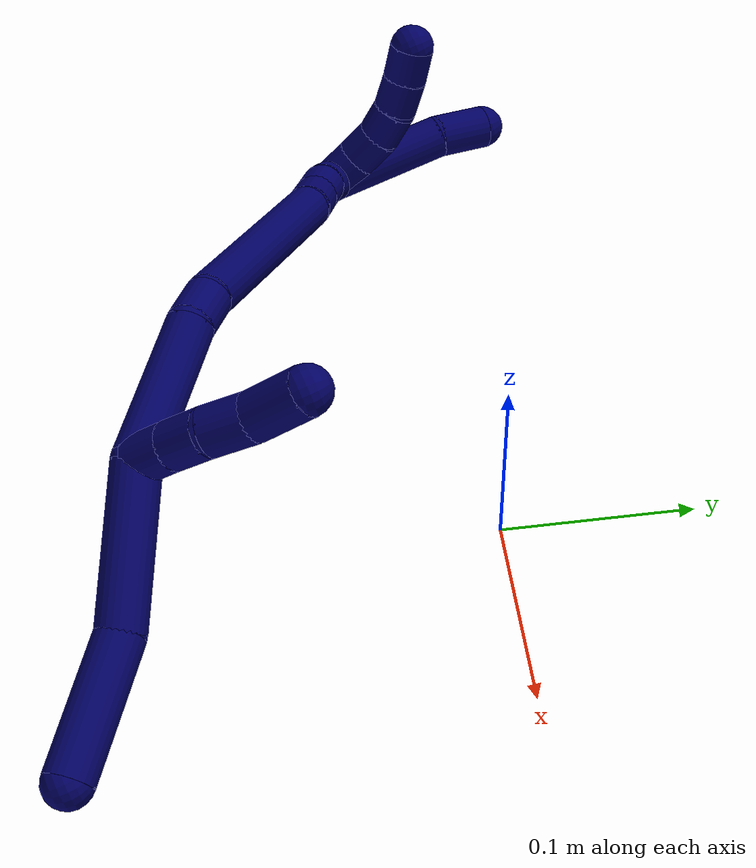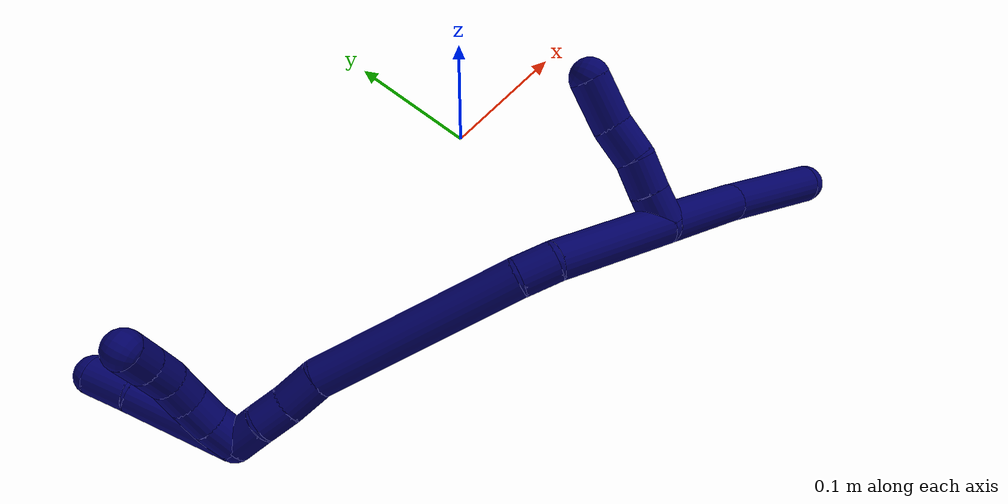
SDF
<sdf version="1.7">
 <world name="default">
  <model name="7">
   <static>0</static>
   <link name="7">
    <collision name="collision-cylinder-e_1_2_8">
     <pose>0.002329 -0.035527 0.018646 1.08749 0.057981 0.035058</pose>
     <geometry><cylinder><radius>0.0125</radius><length>0.080381</length></cylinder></geometry>
     <surface>
      <friction><ode><mu>1.16</mu><mu2>1.16</mu2><slip1>0</slip1><slip2>0</slip2></ode></friction>
      <contact><ode><kp>1e+06</kp><kd>1</kd><max_vel>0</max_vel><min_depth>0.001</min_depth></ode></contact>
     </surface>
    </collision>
    <visual name="visual-cylinder-e_1_2_8">
     <pose>0.002329 -0.035527 0.018646 1.08749 0.057981 0.035058</pose>
     <geometry><cylinder><radius>0.0125</radius><length>0.080381</length></cylinder></geometry>
     <material><ambient>0.003922 0 0.403922 1</ambient></material>
    </visual>
    <collision name="collision-cylinder-e_2_8_6">
     <pose>0.013898 -0.096383 0.059309 0.855208 0.268673 0.123027</pose>
     <geometry><cylinder><radius>0.0125</radius><length>0.069619</length></cylinder></geometry>
     <surface>
      <friction><ode><mu>1.16</mu><mu2>1.16</mu2><slip1>0</slip1><slip2>0</slip2></ode></friction>
      <contact><ode><kp>1e+06</kp><kd>1</kd><max_vel>0</max_vel><min_depth>0.001</min_depth></ode></contact>
     </surface>
    </collision>
    <visual name="visual-cylinder-e_2_8_6">
     <pose>0.013898 -0.096383 0.059309 0.855208 0.268673 0.123027</pose>
     <geometry><cylinder><radius>0.0125</radius><length>0.069619</length></cylinder></geometry>
     <material><ambient>0.003922 0 0.403922 1</ambient></material>
    </visual>
    <collision name="collision-cylinder-e_1_2_9">
     <pose>0.006571 -0.000934 -0.008726 3.03502 0.642743 2.82385</pose>
     <geometry><cylinder><radius>0.0125</radius><length>0.021927</length></cylinder></geometry>
     <surface>
      <friction><ode><mu>1.16</mu><mu2>1.16</mu2><slip1>0</slip1><slip2>0</slip2></ode></friction>
      <contact><ode><kp>1e+06</kp><kd>1</kd><max_vel>0</max_vel><min_depth>0.001</min_depth></ode></contact>
     </surface>
    </collision>
    <visual name="visual-cylinder-e_1_2_9">
     <pose>0.006571 -0.000934 -0.008726 3.03502 0.642743 2.82385</pose>
     <geometry><cylinder><radius>0.0125</radius><length>0.021927</length></cylinder></geometry>
     <material><ambient>0.003922 0 0.403922 1</ambient></material>
    </visual>
    <collision name="collision-cylinder-e_2_9_10">
     <pose>0.020141 -0.00319 -0.02601 2.9882 0.679659 2.71352</pose>
     <geometry><cylinder><radius>0.0125</radius><length>0.022268</length></cylinder></geometry>
     <surface>
      <friction><ode><mu>1.16</mu><mu2>1.16</mu2><slip1>0</slip1><slip2>0</slip2></ode></friction>
      <contact><ode><kp>1e+06</kp><kd>1</kd><max_vel>0</max_vel><min_depth>0.001</min_depth></ode></contact>
     </surface>
    </collision>
    <visual name="visual-cylinder-e_2_9_10">
     <pose>0.020141 -0.00319 -0.02601 2.9882 0.679659 2.71352</pose>
     <geometry><cylinder><radius>0.0125</radius><length>0.022268</length></cylinder></geometry>
     <material><ambient>0.003922 0 0.403922 1</ambient></material>
    </visual>
    <collision name="collision-cylinder-e_3_10_11">
     <pose>0.032352 -0.006221 -0.045187 2.98213 0.451375 2.47181</pose>
     <geometry><cylinder><radius>0.0125</radius><length>0.023904</length></cylinder></geometry>
     <surface>
      <friction><ode><mu>1.16</mu><mu2>1.16</mu2><slip1>0</slip1><slip2>0</slip2></ode></friction>
      <contact><ode><kp>1e+06</kp><kd>1</kd><max_vel>0</max_vel><min_depth>0.001</min_depth></ode></contact>
     </surface>
    </collision>
    <visual name="visual-cylinder-e_3_10_11">
     <pose>0.032352 -0.006221 -0.045187 2.98213 0.451375 2.47181</pose>
     <geometry><cylinder><radius>0.0125</radius><length>0.023904</length></cylinder></geometry>
     <material><ambient>0.003922 0 0.403922 1</ambient></material>
    </visual>
    <collision name="collision-cylinder-e_4_11_5">
     <pose>0.047285 -0.008616 -0.068434 3.08727 0.655196 2.98205</pose>
     <geometry><cylinder><radius>0.0125</radius><length>0.031901</length></cylinder></geometry>
     <surface>
      <friction><ode><mu>1.16</mu><mu2>1.16</mu2><slip1>0</slip1><slip2>0</slip2></ode></friction>
      <contact><ode><kp>1e+06</kp><kd>1</kd><max_vel>0</max_vel><min_depth>0.001</min_depth></ode></contact>
     </surface>
    </collision>
    <visual name="visual-cylinder-e_4_11_5">
     <pose>0.047285 -0.008616 -0.068434 3.08727 0.655196 2.98205</pose>
     <geometry><cylinder><radius>0.0125</radius><length>0.031901</length></cylinder></geometry>
     <material><ambient>0.003922 0 0.403922 1</ambient></material>
    </visual>
    <collision name="collision-cylinder-e_1_2_12">
     <pose>-0.014275 0.027335 -0.024315 -2.29779 -0.372015 0.793985</pose>
     <geometry><cylinder><radius>0.0125</radius><length>0.078542</length></cylinder></geometry>
     <surface>
      <friction><ode><mu>1.16</mu><mu2>1.16</mu2><slip1>0</slip1><slip2>0</slip2></ode></friction>
      <contact><ode><kp>1e+06</kp><kd>1</kd><max_vel>0</max_vel><min_depth>0.001</min_depth></ode></contact>
     </surface>
    </collision>
    <visual name="visual-cylinder-e_1_2_12">
     <pose>-0.014275 0.027335 -0.024315 -2.29779 -0.372015 0.793985</pose>
     <geometry><cylinder><radius>0.0125</radius><length>0.078542</length></cylinder></geometry>
     <material><ambient>0.003922 0 0.403922 1</ambient></material>
    </visual>
    <collision name="collision-cylinder-e_2_12_13">
     <pose>-0.035542 0.060851 -0.055749 -2.4266 -0.638163 1.44828</pose>
     <geometry><cylinder><radius>0.0125</radius><length>0.023475</length></cylinder></geometry>
     <surface>
      <friction><ode><mu>1.16</mu><mu2>1.16</mu2><slip1>0</slip1><slip2>0</slip2></ode></friction>
      <contact><ode><kp>1e+06</kp><kd>1</kd><max_vel>0</max_vel><min_depth>0.001</min_depth></ode></contact>
     </surface>
    </collision>
    <visual name="visual-cylinder-e_2_12_13">
     <pose>-0.035542 0.060851 -0.055749 -2.4266 -0.638163 1.44828</pose>
     <geometry><cylinder><radius>0.0125</radius><length>0.023475</length></cylinder></geometry>
     <material><ambient>0.003922 0 0.403922 1</ambient></material>
    </visual>
    <collision name="collision-cylinder-e_3_13_14">
     <pose>-0.091558 0.089974 -0.101018 -2.60016 -0.83354 2.02166</pose>
     <geometry><cylinder><radius>0.0125</radius><length>0.13244</length></cylinder></geometry>
     <surface>
      <friction><ode><mu>1.16</mu><mu2>1.16</mu2><slip1>0</slip1><slip2>0</slip2></ode></friction>
      <contact><ode><kp>1e+06</kp><kd>1</kd><max_vel>0</max_vel><min_depth>0.001</min_depth></ode></contact>
     </surface>
    </collision>
    <visual name="visual-cylinder-e_3_13_14">
     <pose>-0.091558 0.089974 -0.101018 -2.60016 -0.83354 2.02166</pose>
     <geometry><cylinder><radius>0.0125</radius><length>0.13244</length></cylinder></geometry>
     <material><ambient>0.003922 0 0.403922 1</ambient></material>
    </visual>
    <collision name="collision-cylinder-e_4_14_15">
     <pose>-0.150865 0.117452 -0.143661 -2.35159 -1.0152 1.85515</pose>
     <geometry><cylinder><radius>0.0125</radius><length>0.024208</length></cylinder></geometry>
     <surface>
      <friction><ode><mu>1.16</mu><mu2>1.16</mu2><slip1>0</slip1><slip2>0</slip2></ode></friction>
      <contact><ode><kp>1e+06</kp><kd>1</kd><max_vel>0</max_vel><min_depth>0.001</min_depth></ode></contact>
     </surface>
    </collision>
    <visual name="visual-cylinder-e_4_14_15">
     <pose>-0.150865 0.117452 -0.143661 -2.35159 -1.0152 1.85515</pose>
     <geometry><cylinder><radius>0.0125</radius><length>0.024208</length></cylinder></geometry>
     <material><ambient>0.003922 0 0.403922 1</ambient></material>
    </visual>
    <collision name="collision-cylinder-e_5_15_16">
     <pose>-0.169088 0.12615 -0.15263 -2.39231 -0.914714 1.79339</pose>
     <geometry><cylinder><radius>0.0125</radius><length>0.02004</length></cylinder></geometry>
     <surface>
      <friction><ode><mu>1.16</mu><mu2>1.16</mu2><slip1>0</slip1><slip2>0</slip2></ode></friction>
      <contact><ode><kp>1e+06</kp><kd>1</kd><max_vel>0</max_vel><min_depth>0.001</min_depth></ode></contact>
     </surface>
    </collision>
    <visual name="visual-cylinder-e_5_15_16">
     <pose>-0.169088 0.12615 -0.15263 -2.39231 -0.914714 1.79339</pose>
     <geometry><cylinder><radius>0.0125</radius><length>0.02004</length></cylinder></geometry>
     <material><ambient>0.003922 0 0.403922 1</ambient></material>
    </visual>
    <collision name="collision-cylinder-e_6_16_1">
     <pose>-0.186345 0.132797 -0.161621 -2.63883 -1.06552 2.32004</pose>
     <geometry><cylinder><radius>0.0125</radius><length>0.021295</length></cylinder></geometry>
     <surface>
      <friction><ode><mu>1.16</mu><mu2>1.16</mu2><slip1>0</slip1><slip2>0</slip2></ode></friction>
      <contact><ode><kp>1e+06</kp><kd>1</kd><max_vel>0</max_vel><min_depth>0.001</min_depth></ode></contact>
     </surface>
    </collision>
    <visual name="visual-cylinder-e_6_16_1">
     <pose>-0.186345 0.132797 -0.161621 -2.63883 -1.06552 2.32004</pose>
     <geometry><cylinder><radius>0.0125</radius><length>0.021295</length></cylinder></geometry>
     <material><ambient>0.003922 0 0.403922 1</ambient></material>
    </visual>
    <collision name="collision-cylinder-e_1_1_17">
     <pose>-0.197934 0.136041 -0.2011 -3.11983 -0.064878 2.49449</pose>
     <geometry><cylinder><radius>0.0125</radius><length>0.070088</length></cylinder></geometry>
     <surface>
      <friction><ode><mu>1.16</mu><mu2>1.16</mu2><slip1>0</slip1><slip2>0</slip2></ode></friction>
      <contact><ode><kp>1e+06</kp><kd>1</kd><max_vel>0</max_vel><min_depth>0.001</min_depth></ode></contact>
     </surface>
    </collision>
    <visual name="visual-cylinder-e_1_1_17">
     <pose>-0.197934 0.136041 -0.2011 -3.11983 -0.064878 2.49449</pose>
     <geometry><cylinder><radius>0.0125</radius><length>0.070088</length></cylinder></geometry>
     <material><ambient>0.003922 0 0.403922 1</ambient></material>
    </visual>
    <collision name="collision-cylinder-e_2_17_4">
     <pose>-0.203617 0.135135 -0.250528 3.02684 -0.23012 -2.21911</pose>
     <geometry><cylinder><radius>0.0125</radius><length>0.029912</length></cylinder></geometry>
     <surface>
      <friction><ode><mu>1.16</mu><mu2>1.16</mu2><slip1>0</slip1><slip2>0</slip2></ode></friction>
      <contact><ode><kp>1e+06</kp><kd>1</kd><max_vel>0</max_vel><min_depth>0.001</min_depth></ode></contact>
     </surface>
    </collision>
    <visual name="visual-cylinder-e_2_17_4">
     <pose>-0.203617 0.135135 -0.250528 3.02684 -0.23012 -2.21911</pose>
     <geometry><cylinder><radius>0.0125</radius><length>0.029912</length></cylinder></geometry>
     <material><ambient>0.003922 0 0.403922 1</ambient></material>
    </visual>
    <collision name="collision-cylinder-e_1_1_18">
     <pose>-0.19115 0.137759 -0.174711 -2.86018 0.46806 -2.06938</pose>
     <geometry><cylinder><radius>0.0125</radius><length>0.02</length></cylinder></geometry>
     <surface>
      <friction><ode><mu>1.16</mu><mu2>1.16</mu2><slip1>0</slip1><slip2>0</slip2></ode></friction>
      <contact><ode><kp>1e+06</kp><kd>1</kd><max_vel>0</max_vel><min_depth>0.001</min_depth></ode></contact>
     </surface>
    </collision>
    <visual name="visual-cylinder-e_1_1_18">
     <pose>-0.19115 0.137759 -0.174711 -2.86018 0.46806 -2.06938</pose>
     <geometry><cylinder><radius>0.0125</radius><length>0.02</length></cylinder></geometry>
     <material><ambient>0.003922 0 0.403922 1</ambient></material>
    </visual>
    <collision name="collision-cylinder-e_2_18_19">
     <pose>-0.180943 0.142465 -0.191196 -2.86711 0.606001 -2.30961</pose>
     <geometry><cylinder><radius>0.0125</radius><length>0.02</length></cylinder></geometry>
     <surface>
      <friction><ode><mu>1.16</mu><mu2>1.16</mu2><slip1>0</slip1><slip2>0</slip2></ode></friction>
      <contact><ode><kp>1e+06</kp><kd>1</kd><max_vel>0</max_vel><min_depth>0.001</min_depth></ode></contact>
     </surface>
    </collision>
    <visual name="visual-cylinder-e_2_18_19">
     <pose>-0.180943 0.142465 -0.191196 -2.86711 0.606001 -2.30961</pose>
     <geometry><cylinder><radius>0.0125</radius><length>0.02</length></cylinder></geometry>
     <material><ambient>0.003922 0 0.403922 1</ambient></material>
    </visual>
    <collision name="collision-cylinder-e_3_19_20">
     <pose>-0.168316 0.148302 -0.205348 -2.61729 0.765748 -1.96618</pose>
     <geometry><cylinder><radius>0.0125</radius><length>0.02</length></cylinder></geometry>
     <surface>
      <friction><ode><mu>1.16</mu><mu2>1.16</mu2><slip1>0</slip1><slip2>0</slip2></ode></friction>
      <contact><ode><kp>1e+06</kp><kd>1</kd><max_vel>0</max_vel><min_depth>0.001</min_depth></ode></contact>
     </surface>
    </collision>
    <visual name="visual-cylinder-e_3_19_20">
     <pose>-0.168316 0.148302 -0.205348 -2.61729 0.765748 -1.96618</pose>
     <geometry><cylinder><radius>0.0125</radius><length>0.02</length></cylinder></geometry>
     <material><ambient>0.003922 0 0.403922 1</ambient></material>
    </visual>
    <collision name="collision-cylinder-e_4_20_21">
     <pose>-0.154792 0.157402 -0.216723 -2.32258 0.719988 -1.42877</pose>
     <geometry><cylinder><radius>0.0125</radius><length>0.02</length></cylinder></geometry>
     <surface>
      <friction><ode><mu>1.16</mu><mu2>1.16</mu2><slip1>0</slip1><slip2>0</slip2></ode></friction>
      <contact><ode><kp>1e+06</kp><kd>1</kd><max_vel>0</max_vel><min_depth>0.001</min_depth></ode></contact>
     </surface>
    </collision>
    <visual name="visual-cylinder-e_4_20_21">
     <pose>-0.154792 0.157402 -0.216723 -2.32258 0.719988 -1.42877</pose>
     <geometry><cylinder><radius>0.0125</radius><length>0.02</length></cylinder></geometry>
     <material><ambient>0.003922 0 0.403922 1</ambient></material>
    </visual>
    <collision name="collision-cylinder-e_5_21_3">
     <pose>-0.141455 0.168798 -0.226294 -2.21523 0.739954 -1.32059</pose>
     <geometry><cylinder><radius>0.0125</radius><length>0.02</length></cylinder></geometry>
     <surface>
      <friction><ode><mu>1.16</mu><mu2>1.16</mu2><slip1>0</slip1><slip2>0</slip2></ode></friction>
      <contact><ode><kp>1e+06</kp><kd>1</kd><max_vel>0</max_vel><min_depth>0.001</min_depth></ode></contact>
     </surface>
    </collision>
    <visual name="visual-cylinder-e_5_21_3">
     <pose>-0.141455 0.168798 -0.226294 -2.21523 0.739954 -1.32059</pose>
     <geometry><cylinder><radius>0.0125</radius><length>0.02</length></cylinder></geometry>
     <material><ambient>0.003922 0 0.403922 1</ambient></material>
    </visual>
    <collision name="collision-sphere-3">
     <pose>-0.134713 0.174702 -0.23073 0 -0 0</pose>
     <geometry><sphere><radius>0.0125</radius></sphere></geometry>
     <surface>
      <friction><ode><mu>1.16</mu><mu2>1.16</mu2><slip1>0</slip1><slip2>0</slip2></ode></friction>
      <contact><ode><kp>1e+06</kp><kd>1</kd><max_vel>0</max_vel><min_depth>0.001</min_depth></ode></contact>
     </surface>
    </collision>
    <visual name="visual-sphere-3">
     <pose>-0.134713 0.174702 -0.23073 0 -0 0</pose>
     <geometry><sphere><radius>0.0125</radius></sphere></geometry>
     <material><ambient>0.003922 0 0.403922 1</ambient></material>
    </visual>
    <collision name="collision-sphere-21">
     <pose>-0.148198 0.162894 -0.221857 0 -0 0</pose>
     <geometry><sphere><radius>0.0125</radius></sphere></geometry>
     <surface>
      <friction><ode><mu>1.16</mu><mu2>1.16</mu2><slip1>0</slip1><slip2>0</slip2></ode></friction>
      <contact><ode><kp>1e+06</kp><kd>1</kd><max_vel>0</max_vel><min_depth>0.001</min_depth></ode></contact>
     </surface>
    </collision>
    <visual name="visual-sphere-21">
     <pose>-0.148198 0.162894 -0.221857 0 -0 0</pose>
     <geometry><sphere><radius>0.0125</radius></sphere></geometry>
     <material><ambient>0.003922 0 0.403922 1</ambient></material>
    </visual>
    <collision name="collision-sphere-20">
     <pose>-0.161385 0.15191 -0.211588 0 -0 0</pose>
     <geometry><sphere><radius>0.0125</radius></sphere></geometry>
     <surface>
      <friction><ode><mu>1.16</mu><mu2>1.16</mu2><slip1>0</slip1><slip2>0</slip2></ode></friction>
      <contact><ode><kp>1e+06</kp><kd>1</kd><max_vel>0</max_vel><min_depth>0.001</min_depth></ode></contact>
     </surface>
    </collision>
    <visual name="visual-sphere-20">
     <pose>-0.161385 0.15191 -0.211588 0 -0 0</pose>
     <geometry><sphere><radius>0.0125</radius></sphere></geometry>
     <material><ambient>0.003922 0 0.403922 1</ambient></material>
    </visual>
    <collision name="collision-sphere-19">
     <pose>-0.175247 0.144693 -0.199107 0 -0 0</pose>
     <geometry><sphere><radius>0.0125</radius></sphere></geometry>
     <surface>
      <friction><ode><mu>1.16</mu><mu2>1.16</mu2><slip1>0</slip1><slip2>0</slip2></ode></friction>
      <contact><ode><kp>1e+06</kp><kd>1</kd><max_vel>0</max_vel><min_depth>0.001</min_depth></ode></contact>
     </surface>
    </collision>
    <visual name="visual-sphere-19">
     <pose>-0.175247 0.144693 -0.199107 0 -0 0</pose>
     <geometry><sphere><radius>0.0125</radius></sphere></geometry>
     <material><ambient>0.003922 0 0.403922 1</ambient></material>
    </visual>
    <collision name="collision-sphere-11">
     <pose>0.037566 -0.007929 -0.055805 0 -0 0</pose>
     <geometry><sphere><radius>0.0125</radius></sphere></geometry>
     <surface>
      <friction><ode><mu>1.16</mu><mu2>1.16</mu2><slip1>0</slip1><slip2>0</slip2></ode></friction>
      <contact><ode><kp>1e+06</kp><kd>1</kd><max_vel>0</max_vel><min_depth>0.001</min_depth></ode></contact>
     </surface>
    </collision>
    <visual name="visual-sphere-11">
     <pose>0.037566 -0.007929 -0.055805 0 -0 0</pose>
     <geometry><sphere><radius>0.0125</radius></sphere></geometry>
     <material><ambient>0.003922 0 0.403922 1</ambient></material>
    </visual>
    <collision name="collision-sphere-10">
     <pose>0.027139 -0.004513 -0.034568 0 -0 0</pose>
     <geometry><sphere><radius>0.0125</radius></sphere></geometry>
     <surface>
      <friction><ode><mu>1.16</mu><mu2>1.16</mu2><slip1>0</slip1><slip2>0</slip2></ode></friction>
      <contact><ode><kp>1e+06</kp><kd>1</kd><max_vel>0</max_vel><min_depth>0.001</min_depth></ode></contact>
     </surface>
    </collision>
    <visual name="visual-sphere-10">
     <pose>0.027139 -0.004513 -0.034568 0 -0 0</pose>
     <geometry><sphere><radius>0.0125</radius></sphere></geometry>
     <material><ambient>0.003922 0 0.403922 1</ambient></material>
    </visual>
    <collision name="collision-sphere-6">
     <pose>0.023139 -0.121712 0.081327 0 -0 0</pose>
     <geometry><sphere><radius>0.0125</radius></sphere></geometry>
     <surface>
      <friction><ode><mu>1.16</mu><mu2>1.16</mu2><slip1>0</slip1><slip2>0</slip2></ode></friction>
      <contact><ode><kp>1e+06</kp><kd>1</kd><max_vel>0</max_vel><min_depth>0.001</min_depth></ode></contact>
     </surface>
    </collision>
    <visual name="visual-sphere-6">
     <pose>0.023139 -0.121712 0.081327 0 -0 0</pose>
     <geometry><sphere><radius>0.0125</radius></sphere></geometry>
     <material><ambient>0.003922 0 0.403922 1</ambient></material>
    </visual>
    <collision name="collision-sphere-9">
     <pose>0.013143 -0.001867 -0.017452 0 -0 0</pose>
     <geometry><sphere><radius>0.0125</radius></sphere></geometry>
     <surface>
      <friction><ode><mu>1.16</mu><mu2>1.16</mu2><slip1>0</slip1><slip2>0</slip2></ode></friction>
      <contact><ode><kp>1e+06</kp><kd>1</kd><max_vel>0</max_vel><min_depth>0.001</min_depth></ode></contact>
     </surface>
    </collision>
    <visual name="visual-sphere-9">
     <pose>0.013143 -0.001867 -0.017452 0 -0 0</pose>
     <geometry><sphere><radius>0.0125</radius></sphere></geometry>
     <material><ambient>0.003922 0 0.403922 1</ambient></material>
    </visual>
    <collision name="collision-sphere-2">
     <geometry><sphere><radius>0.0125</radius></sphere></geometry>
     <surface>
      <friction><ode><mu>1.16</mu><mu2>1.16</mu2><slip1>0</slip1><slip2>0</slip2></ode></friction>
      <contact><ode><kp>1e+06</kp><kd>1</kd><max_vel>0</max_vel><min_depth>0.001</min_depth></ode></contact>
     </surface>
    </collision>
    <visual name="visual-sphere-2">
     <geometry><sphere><radius>0.0125</radius></sphere></geometry>
     <material><ambient>0.003922 0 0.403922 1</ambient></material>
    </visual>
    <collision name="collision-sphere-8">
     <pose>0.004658 -0.071055 0.037291 0 -0 0</pose>
     <geometry><sphere><radius>0.0125</radius></sphere></geometry>
     <surface>
      <friction><ode><mu>1.16</mu><mu2>1.16</mu2><slip1>0</slip1><slip2>0</slip2></ode></friction>
      <contact><ode><kp>1e+06</kp><kd>1</kd><max_vel>0</max_vel><min_depth>0.001</min_depth></ode></contact>
     </surface>
    </collision>
    <visual name="visual-sphere-8">
     <pose>0.004658 -0.071055 0.037291 0 -0 0</pose>
     <geometry><sphere><radius>0.0125</radius></sphere></geometry>
     <material><ambient>0.003922 0 0.403922 1</ambient></material>
    </visual>
    <collision name="collision-sphere-5">
     <pose>0.057004 -0.009302 -0.081063 0 -0 0</pose>
     <geometry><sphere><radius>0.0125</radius></sphere></geometry>
     <surface>
      <friction><ode><mu>1.16</mu><mu2>1.16</mu2><slip1>0</slip1><slip2>0</slip2></ode></friction>
      <contact><ode><kp>1e+06</kp><kd>1</kd><max_vel>0</max_vel><min_depth>0.001</min_depth></ode></contact>
     </surface>
    </collision>
    <visual name="visual-sphere-5">
     <pose>0.057004 -0.009302 -0.081063 0 -0 0</pose>
     <geometry><sphere><radius>0.0125</radius></sphere></geometry>
     <material><ambient>0.003922 0 0.403922 1</ambient></material>
    </visual>
    <collision name="collision-sphere-12">
     <pose>-0.028549 0.05467 -0.04863 0 -0 0</pose>
     <geometry><sphere><radius>0.0125</radius></sphere></geometry>
     <surface>
      <friction><ode><mu>1.16</mu><mu2>1.16</mu2><slip1>0</slip1><slip2>0</slip2></ode></friction>
      <contact><ode><kp>1e+06</kp><kd>1</kd><max_vel>0</max_vel><min_depth>0.001</min_depth></ode></contact>
     </surface>
    </collision>
    <visual name="visual-sphere-12">
     <pose>-0.028549 0.05467 -0.04863 0 -0 0</pose>
     <geometry><sphere><radius>0.0125</radius></sphere></geometry>
     <material><ambient>0.003922 0 0.403922 1</ambient></material>
    </visual>
    <collision name="collision-sphere-13">
     <pose>-0.042534 0.067032 -0.062868 0 -0 0</pose>
     <geometry><sphere><radius>0.0125</radius></sphere></geometry>
     <surface>
      <friction><ode><mu>1.16</mu><mu2>1.16</mu2><slip1>0</slip1><slip2>0</slip2></ode></friction>
      <contact><ode><kp>1e+06</kp><kd>1</kd><max_vel>0</max_vel><min_depth>0.001</min_depth></ode></contact>
     </surface>
    </collision>
    <visual name="visual-sphere-13">
     <pose>-0.042534 0.067032 -0.062868 0 -0 0</pose>
     <geometry><sphere><radius>0.0125</radius></sphere></geometry>
     <material><ambient>0.003922 0 0.403922 1</ambient></material>
    </visual>
    <collision name="collision-sphere-14">
     <pose>-0.140581 0.112917 -0.139167 0 -0 0</pose>
     <geometry><sphere><radius>0.0125</radius></sphere></geometry>
     <surface>
      <friction><ode><mu>1.16</mu><mu2>1.16</mu2><slip1>0</slip1><slip2>0</slip2></ode></friction>
      <contact><ode><kp>1e+06</kp><kd>1</kd><max_vel>0</max_vel><min_depth>0.001</min_depth></ode></contact>
     </surface>
    </collision>
    <visual name="visual-sphere-14">
     <pose>-0.140581 0.112917 -0.139167 0 -0 0</pose>
     <geometry><sphere><radius>0.0125</radius></sphere></geometry>
     <material><ambient>0.003922 0 0.403922 1</ambient></material>
    </visual>
    <collision name="collision-sphere-15">
     <pose>-0.161148 0.121987 -0.148154 0 -0 0</pose>
     <geometry><sphere><radius>0.0125</radius></sphere></geometry>
     <surface>
      <friction><ode><mu>1.16</mu><mu2>1.16</mu2><slip1>0</slip1><slip2>0</slip2></ode></friction>
      <contact><ode><kp>1e+06</kp><kd>1</kd><max_vel>0</max_vel><min_depth>0.001</min_depth></ode></contact>
     </surface>
    </collision>
    <visual name="visual-sphere-15">
     <pose>-0.161148 0.121987 -0.148154 0 -0 0</pose>
     <geometry><sphere><radius>0.0125</radius></sphere></geometry>
     <material><ambient>0.003922 0 0.403922 1</ambient></material>
    </visual>
    <collision name="collision-sphere-16">
     <pose>-0.177028 0.130313 -0.157105 0 -0 0</pose>
     <geometry><sphere><radius>0.0125</radius></sphere></geometry>
     <surface>
      <friction><ode><mu>1.16</mu><mu2>1.16</mu2><slip1>0</slip1><slip2>0</slip2></ode></friction>
      <contact><ode><kp>1e+06</kp><kd>1</kd><max_vel>0</max_vel><min_depth>0.001</min_depth></ode></contact>
     </surface>
    </collision>
    <visual name="visual-sphere-16">
     <pose>-0.177028 0.130313 -0.157105 0 -0 0</pose>
     <geometry><sphere><radius>0.0125</radius></sphere></geometry>
     <material><ambient>0.003922 0 0.403922 1</ambient></material>
    </visual>
    <collision name="collision-sphere-1">
     <pose>-0.195662 0.13528 -0.166137 0 -0 0</pose>
     <geometry><sphere><radius>0.0125</radius></sphere></geometry>
     <surface>
      <friction><ode><mu>1.16</mu><mu2>1.16</mu2><slip1>0</slip1><slip2>0</slip2></ode></friction>
      <contact><ode><kp>1e+06</kp><kd>1</kd><max_vel>0</max_vel><min_depth>0.001</min_depth></ode></contact>
     </surface>
    </collision>
    <visual name="visual-sphere-1">
     <pose>-0.195662 0.13528 -0.166137 0 -0 0</pose>
     <geometry><sphere><radius>0.0125</radius></sphere></geometry>
     <material><ambient>0.003922 0 0.403922 1</ambient></material>
    </visual>
    <collision name="collision-sphere-18">
     <pose>-0.186639 0.140237 -0.183284 0 -0 0</pose>
     <geometry><sphere><radius>0.0125</radius></sphere></geometry>
     <surface>
      <friction><ode><mu>1.16</mu><mu2>1.16</mu2><slip1>0</slip1><slip2>0</slip2></ode></friction>
      <contact><ode><kp>1e+06</kp><kd>1</kd><max_vel>0</max_vel><min_depth>0.001</min_depth></ode></contact>
     </surface>
    </collision>
    <visual name="visual-sphere-18">
     <pose>-0.186639 0.140237 -0.183284 0 -0 0</pose>
     <geometry><sphere><radius>0.0125</radius></sphere></geometry>
     <material><ambient>0.003922 0 0.403922 1</ambient></material>
    </visual>
    <collision name="collision-sphere-17">
     <pose>-0.200206 0.136802 -0.236062 0 -0 0</pose>
     <geometry><sphere><radius>0.0125</radius></sphere></geometry>
     <surface>
      <friction><ode><mu>1.16</mu><mu2>1.16</mu2><slip1>0</slip1><slip2>0</slip2></ode></friction>
      <contact><ode><kp>1e+06</kp><kd>1</kd><max_vel>0</max_vel><min_depth>0.001</min_depth></ode></contact>
     </surface>
    </collision>
    <visual name="visual-sphere-17">
     <pose>-0.200206 0.136802 -0.236062 0 -0 0</pose>
     <geometry><sphere><radius>0.0125</radius></sphere></geometry>
     <material><ambient>0.003922 0 0.403922 1</ambient></material>
    </visual>
    <collision name="collision-sphere-4">
     <pose>-0.207028 0.133468 -0.264993 0 -0 0</pose>
     <geometry><sphere><radius>0.0125</radius></sphere></geometry>
     <surface>
      <friction><ode><mu>1.16</mu><mu2>1.16</mu2><slip1>0</slip1><slip2>0</slip2></ode></friction>
      <contact><ode><kp>1e+06</kp><kd>1</kd><max_vel>0</max_vel><min_depth>0.001</min_depth></ode></contact>
     </surface>
    </collision>
    <visual name="visual-sphere-4">
     <pose>-0.207028 0.133468 -0.264993 0 -0 0</pose>
     <geometry><sphere><radius>0.0125</radius></sphere></geometry>
     <material><ambient>0.003922 0 0.403922 1</ambient></material>
    </visual>
    <inertial>
     <pose>-0.07701 0.056375 -0.08914 0 -0 0</pose>
     <mass>0.75</mass>
     <inertia>
      <ixx>0.000177</ixx>
      <ixy>0</ixy>
      <ixz>0</ixz>
      <iyy>0.000394</iyy>
      <iyz>0</iyz>
      <izz>8.4e-05</izz>
     </inertia>
    </inertial>
   </link>
   <pose>-0.007082 -0.173145 0.072981 1.88838 -0.975104 -0.009387</pose>
  </model>
 </world>
</sdf>
